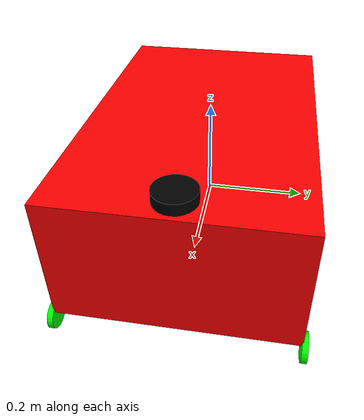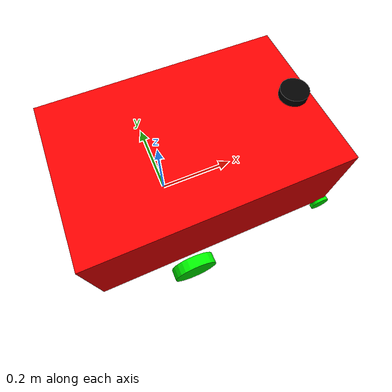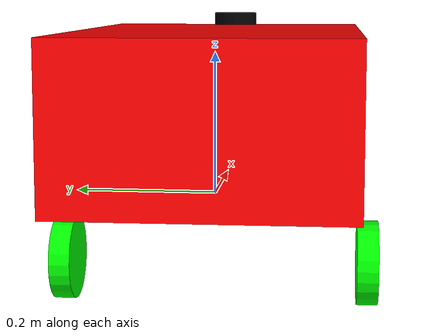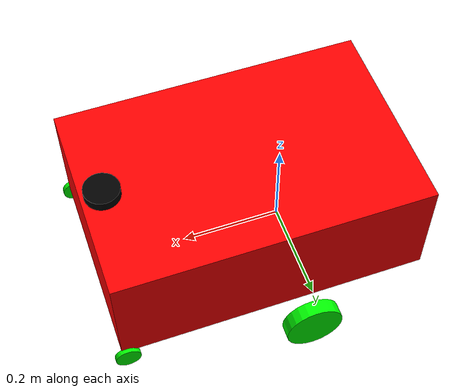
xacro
<?xml version="1.0"?>
<robot xmlns:xacro="http://www.ros.org/wiki/xacro" name="robot">
    <xacro:arg name="simulation" default="false" />

    <xacro:include filename="robot_core.xacro" />
    <xacro:include filename="lidar.xacro" />

    <xacro:if value="$(arg simulation)">
        <xacro:include filename="$(find robocops_description)/description/control/gazebo_control.xacro"/>
    </xacro:if>

    <xacro:unless value="$(arg simulation)">
        <xacro:include filename="$(find robocops_description)/description/control/ros2_control.xacro"/>
        <xacro:robocops_ros2_control name="robocops"/>
    </xacro:unless>

</robot>

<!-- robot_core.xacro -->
<robot xmlns:xacro="http://www.ros.org/wiki/xacro" >
    <xacro:include filename="inertial_macros.xacro"/>

    <xacro:property name="chassis_length" value="0.6221"/>
    <xacro:property name="chassis_width" value="0.408"/>
    <xacro:property name="chassis_height" value="0.2291"/>
    <xacro:property name="chassis_mass" value="1.0"/>

    <xacro:property name="wheel_radius" value="0.06"/>
    <!-- here 0.03 to not be in the chassis, normally it should be 0.06 -->
    <xacro:property name="wheel_thickness" value="0.03"/>
    <xacro:property name="wheel_mass" value="0.05"/>

    <xacro:property name="wheel_offset_x" value="0.0795"/>
    <xacro:property name="wheel_offset_y" value="0.202"/>
    <xacro:property name="wheel_offset_z" value="0.09855"/>

    <xacro:property name="small_wheel_offset_x" value="0.30105"/>
    <xacro:property name="small_wheel_offset_z" value="0.12955"/>

    <xacro:property name="small_wheel_radius" value="0.025"/>
    <xacro:property name="small_wheel_thickness" value="0.01"/>
    <xacro:property name="small_wheel_mass" value="0.04"/>

    <material name="white">
        <color rgba="1 1 1 1" />
    </material>

    <material name="orange">
        <color rgba="1 0.3 0.1 1"/>
    </material>

    <material name="blue">
        <color rgba="0.2 0.2 1 1"/>
    </material>

    <material name="black">
        <color rgba="0 0 0 1"/>
    </material>

    <material name="red">
        <color rgba="1 0 0 1"/>
    </material>

    <material name="green">
        <color rgba="0 1 0 1"/>
    </material>

    <!-- BASE LINK -->

    <link name="base_link" />

    <!-- BASE_FOOTPRINT LINK -->

    <joint name="base_footprint_joint" type="fixed">
        <parent link="base_link"/>
        <child link="base_footprint"/>
        <origin xyz="0 0 0" rpy="0 0 0"/>
    </joint>

    <link name="base_footprint" />

    <joint name="imu_joint" type="fixed">
        <parent link="base_link"/>
        <child link="imu"/>
        <origin xyz="0 0 0" rpy="0 3.14 -1.57"/>
    </joint>

    <link name="imu" />

    <!-- Burshes -->
    <joint name="brushes_joint" type="fixed">
        <parent link="base_link"/>
        <child link="brushes"/>
        <origin xyz="${0.05 + wheel_offset_x}  0 0" rpy="0 0 0"/>
    </joint>

    <link name="brushes" />
    <!-- CHASSIS LINK -->

    <joint name="chassis_joint" type="fixed">
        <parent link="base_link"/>
        <child link="chassis"/>
        <origin xyz="${wheel_offset_x} 0 ${chassis_height/2}"/>
    </joint>

    <link name="chassis">
        <visual>
            <origin xyz="0 0 0"/>
            <geometry>
                <box size="${chassis_length} ${chassis_width} ${chassis_height}"/>
            </geometry>
            <material name="red"/>
        </visual>
        <collision>
            <origin xyz="0 0 0"/>
            <geometry>
                <box size="${chassis_length} ${chassis_width} ${chassis_height}"/>
            </geometry>
        </collision>
        <xacro:inertial_box mass="${chassis_mass}" x="${chassis_length}" y="${chassis_width}" z="${chassis_height}">
            <origin xyz="0 0 0" rpy="0 0 0"/>
        </xacro:inertial_box>
    </link>

    <gazebo reference="chassis">
        <material>Gazebo/Red</material>
    </gazebo>

    <!-- LEFT WHEEL LINK -->

    <joint name="left_wheel_joint" type="continuous">
        <parent link="base_link"/>
        <child link="left_wheel"/>
        <origin xyz="0 ${wheel_offset_y + wheel_thickness/2} ${-wheel_offset_z}" rpy="-${pi/2} 0 0" />
        <axis xyz="0 0 1"/>
    </joint>

    <link name="left_wheel">
        <visual>
            <geometry>
                <cylinder radius="${wheel_radius}" length="${wheel_thickness}"/>
            </geometry>
            <material name="green"/>
        </visual>
        <collision>
            <geometry>
                <cylinder radius="${wheel_radius}" length="${wheel_thickness}"/>
            </geometry>
        </collision>
        <xacro:inertial_cylinder mass="${wheel_mass}" length="${wheel_thickness}" radius="${wheel_radius}">
            <origin xyz="0 0 0" rpy="0 0 0"/>
        </xacro:inertial_cylinder>
    </link>

    <gazebo reference="left_wheel">
        <material>Gazebo/Green</material>
    </gazebo>

    <!-- RIGHT WHEEL LINK -->

    <joint name="right_wheel_joint" type="continuous">
        <parent link="base_link"/>
        <child link="right_wheel"/>
        <origin xyz="0 ${-wheel_offset_y - wheel_thickness/2} ${-wheel_offset_z}" rpy="${pi/2} 0 0" />
        <axis xyz="0 0 -1"/>
    </joint>

    <link name="right_wheel">
        <visual>
            <geometry>
                <cylinder radius="${wheel_radius}" length="${wheel_thickness}"/>
            </geometry>
            <material name="green"/>
        </visual>
        <collision>
            <geometry>
                <cylinder radius="${wheel_radius}" length="${wheel_thickness}"/>
            </geometry>
        </collision>
        <xacro:inertial_cylinder mass="${wheel_mass}" length="${wheel_thickness}" radius="${wheel_radius}">
            <origin xyz="0 0 0" rpy="0 0 0"/>
        </xacro:inertial_cylinder>
    </link>

    <gazebo reference="right_wheel">
        <material>Gazebo/Green</material>
    </gazebo>

    <!-- LEFT FRONT WHEEL -->

    <joint name="left_front_wheel_joint" type="fixed">
        <parent link="chassis"/>
        <child link="left_front_wheel"/>
        <origin xyz="${small_wheel_offset_x} ${wheel_offset_y + small_wheel_thickness/2} ${-small_wheel_offset_z}" rpy="${-pi/2} 0 0" />
    </joint>

    <link name="left_front_wheel">
        <visual>
            <geometry>
                <cylinder radius="${small_wheel_radius}" length="${small_wheel_thickness}"/>
            </geometry>
            <material name="green"/>
        </visual>
        <collision>
            <geometry>
                <cylinder radius="${small_wheel_radius}" length="${small_wheel_thickness}"/>
            </geometry>
        </collision>
        <xacro:inertial_cylinder mass="${small_wheel_mass}" length="${small_wheel_thickness}" radius="${small_wheel_radius}">
            <origin xyz="0 0 0" rpy="0 0 0"/>
        </xacro:inertial_cylinder>
    </link>

    <gazebo reference="left_front_wheel">
        <material>Gazebo/Green</material>
        <mu1 value="0.001"/>
        <mu2 value="0.001"/>
    </gazebo>

    <!-- RIGHT FRONT WHEEL -->

    <joint name="right_front_wheel_joint" type="fixed">
        <parent link="chassis"/>
        <child link="right_front_wheel"/>
        <origin xyz="${small_wheel_offset_x} ${-wheel_offset_y - small_wheel_thickness/2} ${-small_wheel_offset_z}" rpy="${pi/2} 0 0" />
    </joint>

    <link name="right_front_wheel">
        <visual>
            <geometry>
                <cylinder radius="${small_wheel_radius}" length="${small_wheel_thickness}"/>
            </geometry>
            <material name="green"/>
        </visual>
        <collision>
            <geometry>
                <cylinder radius="${small_wheel_radius}" length="${small_wheel_thickness}"/>
            </geometry>
        </collision>
        <xacro:inertial_cylinder mass="${small_wheel_mass}" length="${small_wheel_thickness}" radius="${small_wheel_radius}">
            <origin xyz="0 0 0" rpy="0 0 0"/>
        </xacro:inertial_cylinder>
    </link>

     <gazebo reference="right_front_wheel">
        <material>Gazebo/Green</material>
        <mu1 value="0.001"/>
        <mu2 value="0.001"/>
    </gazebo>

</robot>

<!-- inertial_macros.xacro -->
<robot xmlns:xacro="http://www.ros.org/wiki/xacro" >
    <xacro:macro name="inertial_sphere" params="mass radius *origin">
        <inertial>
            <xacro:insert_block name="origin"/>
            <mass value="${mass}" />
            <inertia ixx="${(2/5) * mass * (radius*radius)}" ixy="0.0" ixz="0.0"
                    iyy="${(2/5) * mass * (radius*radius)}" iyz="0.0"
                    izz="${(2/5) * mass * (radius*radius)}" />
        </inertial>
    </xacro:macro>

    <xacro:macro name="inertial_box" params="mass x y z *origin">
        <inertial>
            <xacro:insert_block name="origin"/>
            <mass value="${mass}" />
            <inertia ixx="${(1/12) * mass * (y*y+z*z)}" ixy="0.0" ixz="0.0"
                    iyy="${(1/12) * mass * (x*x+z*z)}" iyz="0.0"
                    izz="${(1/12) * mass * (x*x+y*y)}" />
        </inertial>
    </xacro:macro>

    <xacro:macro name="inertial_cylinder" params="mass length radius *origin">
        <inertial>
            <xacro:insert_block name="origin"/>
            <mass value="${mass}" />
            <inertia ixx="${(1/12) * mass * (3*radius*radius + length*length)}" ixy="0.0" ixz="0.0"
                    iyy="${(1/12) * mass * (3*radius*radius + length*length)}" iyz="0.0"
                    izz="${(1/2) * mass * (radius*radius)}" />
        </inertial>
    </xacro:macro>
</robot>

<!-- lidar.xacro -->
<robot xmlns:xacro="http://www.ros.org/wiki/xacro" >

    <joint name="laser_joint" type="fixed">
        <parent link="chassis"/>
        <child link="laser_frame"/>
        <origin xyz="0.26855 0 0.12525" rpy="0 0 -1.5708"/>
    </joint>

    <link name="laser_frame">
        <visual>
            <geometry>
                <cylinder radius="0.035" length="0.02"/>
            </geometry>
            <material name="black"/>
        </visual>
        <collision>
            <geometry>
                <cylinder radius="0.035" length="0.02"/>
            </geometry>
        </collision>
        <xacro:inertial_cylinder mass="0.1" length="0.02" radius="0.035">
            <origin xyz="0 0 0" rpy="0 0 0"/>
        </xacro:inertial_cylinder>
    </link>

    <gazebo reference="laser_frame">
        <material>Gazebo/Black</material>

        <sensor name="laser" type="gpu_lidar">
            <pose> 0 0 0 0 0 0 </pose>
            <visualize>true</visualize>
            <update_rate>10</update_rate>
            <topic>scan</topic>
            <gz_frame_id>laser_frame</gz_frame_id>
            <always_on>1</always_on>
            <lidar>
                <scan>
                    <horizontal>
                        <samples>360</samples>
                        <min_angle>-3.14</min_angle>
                        <max_angle>3.14</max_angle>
                    </horizontal>
                </scan>
                <range>
                    <min>0.1</min>
                    <max>12</max>
                    <resolution>1</resolution>
                </range>
                <frame_id>laser_frame</frame_id>
            </lidar>
        </sensor>
    </gazebo>

</robot>
